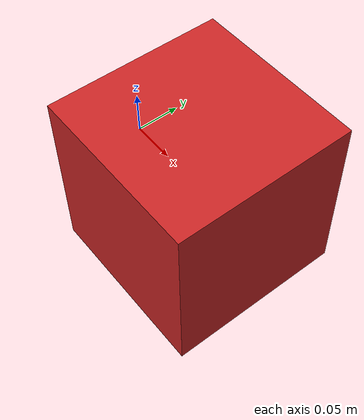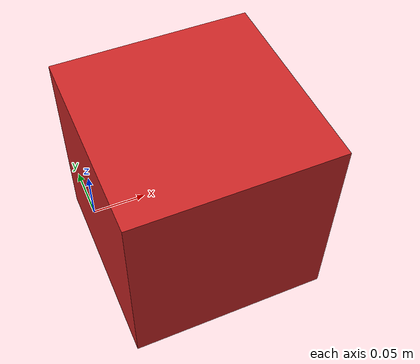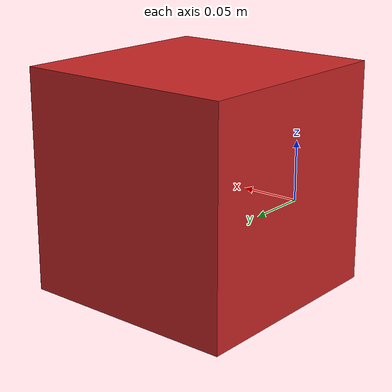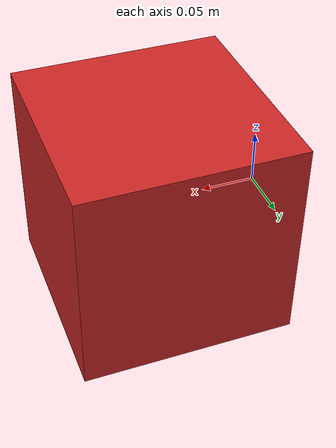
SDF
<?xml version="1.0" encoding="utf-8"?>
<sdf version="1.6">
  <model name="simple_box">
    <static>false</static>
    <pose>0.1 0 0 0 0 0</pose>
    <position>0 0 0 0 0 0</position>
      <link name="cube_link">
	<inertial>
          <inertia>
	    <mass>1.0</mass>
            <ixx>0.0066</ixx>
            <ixy>0.0</ixy>
            <ixz>0.0</ixz>
            <iyy>0.0066</iyy>
            <iyz>0.0</iyz>
            <izz>0.0066</izz>>
	  </inertia>
      </inertial>
      <collision name="collision">
        <geometry>
          <box>
            <size>0.2 0.2 0.2</size>
          </box>
        </geometry>
      </collision>
      <visual name="visual">
        <geometry>
          <box>
            <size>0.2 0.2 0.2</size>
          </box>
        </geometry>
        <material>
          <script>
            <uri>file://media/materials/scripts/gazebo.material</uri>
            <name>Gazebo/Red</name>
          </script>
        </material>
      </visual>
    </link>
  </model>
</sdf>
